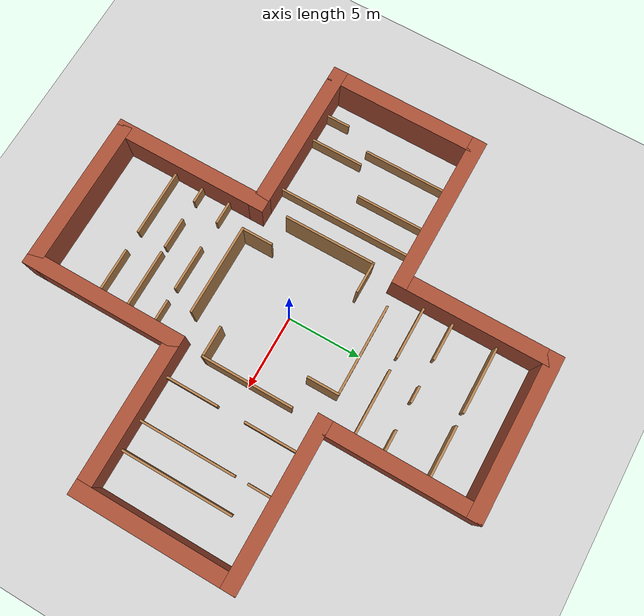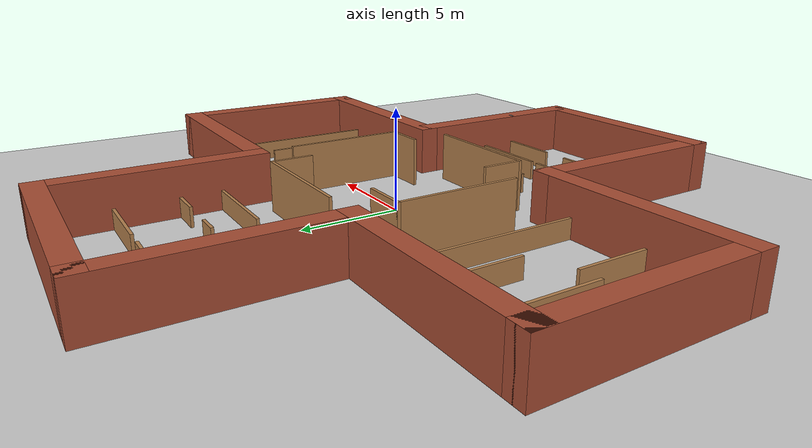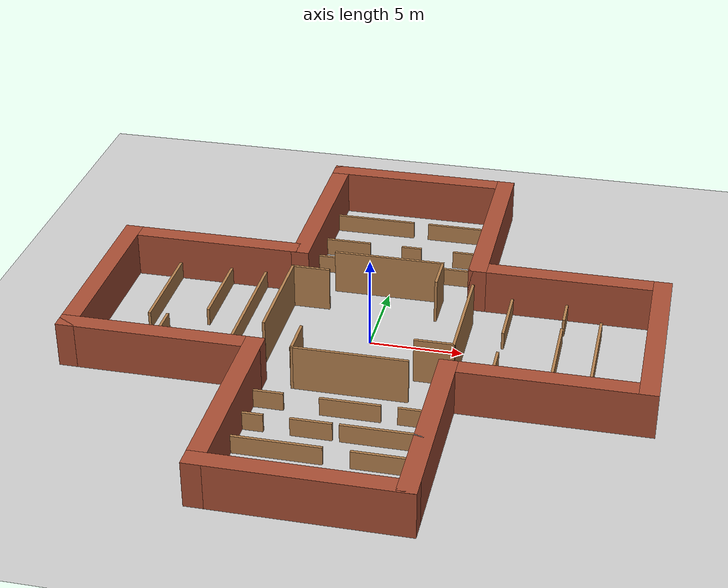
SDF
<?xml version="1.0" ?>
<sdf version="1.5">
  <world name="default">

    <!-- A global light source -->
    <include>
      <uri>model://sun</uri>
    </include>

    <!-- A ground plane -->
    <include>
      <uri>model://ground_plane</uri>
    </include>

<!-- MAZE SDF FILE-->
  <model name='maze'>
    <pose>0 0 0 0 -0 0</pose>
    <link name='Wall_0'>
      <collision name='Wall_0_Collision'>
        <geometry>
          <box>
            <size>11 1 2.5</size>
          </box>
        </geometry>
        <pose>0 0 1.25 0 -0 0</pose>
      </collision>
      <visual name='Wall_0_Visual'>
        <pose>0 0 1.25 0 -0 0</pose>
        <geometry>
          <box>
            <size>11 1 2.5</size>
          </box>
        </geometry>
        <material>
          <script>
            <uri>file://media/materials/scripts/gazebo.material</uri>
            <name>Gazebo/Bricks</name>
          </script>
          <ambient>1 1 1 1</ambient>
        </material>
        <meta>
          <layer>0</layer>
        </meta>
      </visual>
      <pose>0 15 0 0 -0 0</pose>
    </link>
    <link name='Wall_1'>
      <collision name='Wall_1_Collision'>
        <geometry>
          <box>
            <size>11 1 2.5</size>
          </box>
        </geometry>
        <pose>0 0 1.25 0 -0 0</pose>
      </collision>
      <visual name='Wall_1_Visual'>
        <pose>0 0 1.25 0 -0 0</pose>
        <geometry>
          <box>
            <size>11 1 2.5</size>
          </box>
        </geometry>
        <material>
          <script>
            <uri>file://media/materials/scripts/gazebo.material</uri>
            <name>Gazebo/Bricks</name>
          </script>
          <ambient>1 1 1 1</ambient>
        </material>
        <meta>
          <layer>0</layer>
        </meta>
      </visual>
      <pose>5 10 0 0 -0 -1.5708</pose>
    </link>
    <link name='Wall_10'>
      <collision name='Wall_10_Collision'>
        <geometry>
          <box>
            <size>11 1 2.5</size>
          </box>
        </geometry>
        <pose>0 0 1.25 0 -0 0</pose>
      </collision>
      <visual name='Wall_10_Visual'>
        <pose>0 0 1.25 0 -0 0</pose>
        <geometry>
          <box>
            <size>11 1 2.5</size>
          </box>
        </geometry>
        <material>
          <script>
            <uri>file://media/materials/scripts/gazebo.material</uri>
            <name>Gazebo/Bricks</name>
          </script>
          <ambient>1 1 1 1</ambient>
        </material>
        <meta>
          <layer>0</layer>
        </meta>
      </visual>
      <pose>-10 5 0 0 -0 0</pose>
    </link>
    <link name='Wall_11'>
      <collision name='Wall_11_Collision'>
        <geometry>
          <box>
            <size>11 1 2.5</size>
          </box>
        </geometry>
        <pose>0 0 1.25 0 -0 0</pose>
      </collision>
      <visual name='Wall_11_Visual'>
        <pose>0 0 1.25 0 -0 0</pose>
        <geometry>
          <box>
            <size>11 1 2.5</size>
          </box>
        </geometry>
        <material>
          <script>
            <uri>file://media/materials/scripts/gazebo.material</uri>
            <name>Gazebo/Bricks</name>
          </script>
          <ambient>1 1 1 1</ambient>
        </material>
        <meta>
          <layer>0</layer>
        </meta>
      </visual>
      <pose>-5 10 0 0 -0 1.5708</pose>
    </link>
    <link name='Wall_19'>
      <collision name='Wall_19_Collision'>
        <geometry>
          <box>
            <size>5.15 0.15 1</size>
          </box>
        </geometry>
        <pose>0 0 0.5 0 -0 0</pose>
      </collision>
      <visual name='Wall_19_Visual'>
        <pose>0 0 0.5 0 -0 0</pose>
        <geometry>
          <box>
            <size>5.15 0.15 1</size>
          </box>
        </geometry>
        <material>
          <script>
            <uri>file://media/materials/scripts/gazebo.material</uri>
            <name>Gazebo/Wood</name>
          </script>
          <ambient>1 1 1 1</ambient>
        </material>
        <meta>
          <layer>0</layer>
        </meta>
      </visual>
      <pose>-2.5 12 0 0 -0 0</pose>
    </link>
    <link name='Wall_2'>
      <collision name='Wall_2_Collision'>
        <geometry>
          <box>
            <size>11 1 2.5</size>
          </box>
        </geometry>
        <pose>0 0 1.25 0 -0 0</pose>
      </collision>
      <visual name='Wall_2_Visual'>
        <pose>0 0 1.25 0 -0 0</pose>
        <geometry>
          <box>
            <size>11 1 2.5</size>
          </box>
        </geometry>
        <material>
          <script>
            <uri>file://media/materials/scripts/gazebo.material</uri>
            <name>Gazebo/Bricks</name>
          </script>
          <ambient>1 1 1 1</ambient>
        </material>
        <meta>
          <layer>0</layer>
        </meta>
      </visual>
      <pose>10 5 0 0 -0 0</pose>
    </link>
    <link name='Wall_21'>
      <collision name='Wall_21_Collision'>
        <geometry>
          <box>
            <size>4.15 0.15 1</size>
          </box>
        </geometry>
        <pose>0 0 0.5 0 -0 0</pose>
      </collision>
      <visual name='Wall_21_Visual'>
        <pose>0 0 0.5 0 -0 0</pose>
        <geometry>
          <box>
            <size>4.15 0.15 1</size>
          </box>
        </geometry>
        <material>
          <script>
            <uri>file://media/materials/scripts/gazebo.material</uri>
            <name>Gazebo/Wood</name>
          </script>
          <ambient>1 1 1 1</ambient>
        </material>
        <meta>
          <layer>0</layer>
        </meta>
      </visual>
      <pose>3 12 0 0 -0 0</pose>
    </link>
    <link name='Wall_23'>
      <collision name='Wall_23_Collision'>
        <geometry>
          <box>
            <size>3.15 0.15 1</size>
          </box>
        </geometry>
        <pose>0 0 0.5 0 -0 0</pose>
      </collision>
      <visual name='Wall_23_Visual'>
        <pose>0 0 0.5 0 -0 0</pose>
        <geometry>
          <box>
            <size>3.15 0.15 1</size>
          </box>
        </geometry>
        <material>
          <script>
            <uri>file://media/materials/scripts/gazebo.material</uri>
            <name>Gazebo/Wood</name>
          </script>
          <ambient>1 1 1 1</ambient>
        </material>
        <meta>
          <layer>0</layer>
        </meta>
      </visual>
      <pose>-3.5 9 0 0 -0 0</pose>
    </link>
    <link name='Wall_25'>
      <collision name='Wall_25_Collision'>
        <geometry>
          <box>
            <size>1.15 0.15 1</size>
          </box>
        </geometry>
        <pose>0 0 0.5 0 -0 0</pose>
      </collision>
      <visual name='Wall_25_Visual'>
        <pose>0 0 0.5 0 -0 0</pose>
        <geometry>
          <box>
            <size>1.15 0.15 1</size>
          </box>
        </geometry>
        <material>
          <script>
            <uri>file://media/materials/scripts/gazebo.material</uri>
            <name>Gazebo/Wood</name>
          </script>
          <ambient>1 1 1 1</ambient>
        </material>
        <meta>
          <layer>0</layer>
        </meta>
      </visual>
      <pose>0.5 9 0 0 -0 0</pose>
    </link>
    <link name='Wall_27'>
      <collision name='Wall_27_Collision'>
        <geometry>
          <box>
            <size>2.15 0.15 1</size>
          </box>
        </geometry>
        <pose>0 0 0.5 0 -0 0</pose>
      </collision>
      <visual name='Wall_27_Visual'>
        <pose>0 0 0.5 0 -0 0</pose>
        <geometry>
          <box>
            <size>2.15 0.15 1</size>
          </box>
        </geometry>
        <material>
          <script>
            <uri>file://media/materials/scripts/gazebo.material</uri>
            <name>Gazebo/Wood</name>
          </script>
          <ambient>1 1 1 1</ambient>
        </material>
        <meta>
          <layer>0</layer>
        </meta>
      </visual>
      <pose>4 9 0 0 -0 0</pose>
    </link>
    <link name='Wall_29'>
      <collision name='Wall_29_Collision'>
        <geometry>
          <box>
            <size>4.15 0.15 1</size>
          </box>
        </geometry>
        <pose>0 0 0.5 0 -0 0</pose>
      </collision>
      <visual name='Wall_29_Visual'>
        <pose>0 0 0.5 0 -0 0</pose>
        <geometry>
          <box>
            <size>4.15 0.15 1</size>
          </box>
        </geometry>
        <material>
          <script>
            <uri>file://media/materials/scripts/gazebo.material</uri>
            <name>Gazebo/Wood</name>
          </script>
          <ambient>1 1 1 1</ambient>
        </material>
        <meta>
          <layer>0</layer>
        </meta>
      </visual>
      <pose>-3 7 0 0 -0 0</pose>
    </link>
    <link name='Wall_3'>
      <collision name='Wall_3_Collision'>
        <geometry>
          <box>
            <size>11 1 2.5</size>
          </box>
        </geometry>
        <pose>0 0 1.25 0 -0 0</pose>
      </collision>
      <visual name='Wall_3_Visual'>
        <pose>0 0 1.25 0 -0 0</pose>
        <geometry>
          <box>
            <size>11 1 2.5</size>
          </box>
        </geometry>
        <material>
          <script>
            <uri>file://media/materials/scripts/gazebo.material</uri>
            <name>Gazebo/Bricks</name>
          </script>
          <ambient>1 1 1 1</ambient>
        </material>
        <meta>
          <layer>0</layer>
        </meta>
      </visual>
      <pose>15 0 0 0 -0 -1.5708</pose>
    </link>
    <link name='Wall_31'>
      <collision name='Wall_31_Collision'>
        <geometry>
          <box>
            <size>5.15 0.15 1</size>
          </box>
        </geometry>
        <pose>0 0 0.5 0 -0 0</pose>
      </collision>
      <visual name='Wall_31_Visual'>
        <pose>0 0 0.5 0 -0 0</pose>
        <geometry>
          <box>
            <size>5.15 0.15 1</size>
          </box>
        </geometry>
        <material>
          <script>
            <uri>file://media/materials/scripts/gazebo.material</uri>
            <name>Gazebo/Wood</name>
          </script>
          <ambient>1 1 1 1</ambient>
        </material>
        <meta>
          <layer>0</layer>
        </meta>
      </visual>
      <pose>2.5 7 0 0 -0 0</pose>
    </link>
    <link name='Wall_33'>
      <collision name='Wall_33_Collision'>
        <geometry>
          <box>
            <size>6.15 0.15 2.5</size>
          </box>
        </geometry>
        <pose>0 0 1.25 0 -0 0</pose>
      </collision>
      <visual name='Wall_33_Visual'>
        <pose>0 0 1.25 0 -0 0</pose>
        <geometry>
          <box>
            <size>6.15 0.15 2.5</size>
          </box>
        </geometry>
        <material>
          <script>
            <uri>file://media/materials/scripts/gazebo.material</uri>
            <name>Gazebo/Wood</name>
          </script>
          <ambient>1 1 1 1</ambient>
        </material>
        <meta>
          <layer>0</layer>
        </meta>
      </visual>
      <pose>0 5 0 0 -0 0</pose>
    </link>
    <link name='Wall_35'>
      <collision name='Wall_35_Collision'>
        <geometry>
          <box>
            <size>6.15 0.15 2.5</size>
          </box>
        </geometry>
        <pose>0 0 1.25 0 -0 0</pose>
      </collision>
      <visual name='Wall_35_Visual'>
        <pose>0 0 1.25 0 -0 0</pose>
        <geometry>
          <box>
            <size>6.15 0.15 2.5</size>
          </box>
        </geometry>
        <material>
          <script>
            <uri>file://media/materials/scripts/gazebo.material</uri>
            <name>Gazebo/Wood</name>
          </script>
          <ambient>1 1 1 1</ambient>
        </material>
        <meta>
          <layer>0</layer>
        </meta>
      </visual>
      <pose>5 0 0 0 -0 -1.5708</pose>
    </link>
    <link name='Wall_37'>
      <collision name='Wall_37_Collision'>
        <geometry>
          <box>
            <size>6.15 0.15 2.5</size>
          </box>
        </geometry>
        <pose>0 0 1.25 0 -0 0</pose>
      </collision>
      <visual name='Wall_37_Visual'>
        <pose>0 0 1.25 0 -0 0</pose>
        <geometry>
          <box>
            <size>6.15 0.15 2.5</size>
          </box>
        </geometry>
        <material>
          <script>
            <uri>file://media/materials/scripts/gazebo.material</uri>
            <name>Gazebo/Wood</name>
          </script>
          <ambient>1 1 1 1</ambient>
        </material>
        <meta>
          <layer>0</layer>
        </meta>
      </visual>
      <pose>0 -5 0 0 -0 0</pose>
    </link>
    <link name='Wall_39'>
      <collision name='Wall_39_Collision'>
        <geometry>
          <box>
            <size>6.15 0.15 2.5</size>
          </box>
        </geometry>
        <pose>0 0 1.25 0 -0 0</pose>
      </collision>
      <visual name='Wall_39_Visual'>
        <pose>0 0 1.25 0 -0 0</pose>
        <geometry>
          <box>
            <size>6.15 0.15 2.5</size>
          </box>
        </geometry>
        <material>
          <script>
            <uri>file://media/materials/scripts/gazebo.material</uri>
            <name>Gazebo/Wood</name>
          </script>
          <ambient>1 1 1 1</ambient>
        </material>
        <meta>
          <layer>0</layer>
        </meta>
      </visual>
      <pose>-5 0 0 0 -0 -1.5708</pose>
    </link>
    <link name='Wall_4'>
      <collision name='Wall_4_Collision'>
        <geometry>
          <box>
            <size>11 1 2.5</size>
          </box>
        </geometry>
        <pose>0 0 1.25 0 -0 0</pose>
      </collision>
      <visual name='Wall_4_Visual'>
        <pose>0 0 1.25 0 -0 0</pose>
        <geometry>
          <box>
            <size>11 1 2.5</size>
          </box>
        </geometry>
        <material>
          <script>
            <uri>file://media/materials/scripts/gazebo.material</uri>
            <name>Gazebo/Bricks</name>
          </script>
          <ambient>1 1 1 1</ambient>
        </material>
        <meta>
          <layer>0</layer>
        </meta>
      </visual>
      <pose>10 -5 0 0 -0 3.14159</pose>
    </link>
    <link name='Wall_41'>
      <collision name='Wall_41_Collision'>
        <geometry>
          <box>
            <size>10.15 0.15 1</size>
          </box>
        </geometry>
        <pose>0 0 0.5 0 -0 0</pose>
      </collision>
      <visual name='Wall_41_Visual'>
        <pose>0 0 0.5 0 -0 0</pose>
        <geometry>
          <box>
            <size>10.15 0.15 1</size>
          </box>
        </geometry>
        <material>
          <script>
            <uri>file://media/materials/scripts/gazebo.material</uri>
            <name>Gazebo/Wood</name>
          </script>
          <ambient>1 1 1 1</ambient>
        </material>
        <meta>
          <layer>0</layer>
        </meta>
      </visual>
      <pose>-7 0 0 0 -0 -1.5708</pose>
    </link>
    <link name='Wall_43'>
      <collision name='Wall_43_Collision'>
        <geometry>
          <box>
            <size>5.15 0.15 1</size>
          </box>
        </geometry>
        <pose>0 0 0.5 0 -0 0</pose>
      </collision>
      <visual name='Wall_43_Visual'>
        <pose>0 0 0.5 0 -0 0</pose>
        <geometry>
          <box>
            <size>5.15 0.15 1</size>
          </box>
        </geometry>
        <material>
          <script>
            <uri>file://media/materials/scripts/gazebo.material</uri>
            <name>Gazebo/Wood</name>
          </script>
          <ambient>1 1 1 1</ambient>
        </material>
        <meta>
          <layer>0</layer>
        </meta>
      </visual>
      <pose>-9 2.5 0 0 -0 -1.5708</pose>
    </link>
    <link name='Wall_45'>
      <collision name='Wall_45_Collision'>
        <geometry>
          <box>
            <size>4.15 0.15 1</size>
          </box>
        </geometry>
        <pose>0 0 0.5 0 -0 0</pose>
      </collision>
      <visual name='Wall_45_Visual'>
        <pose>0 0 0.5 0 -0 0</pose>
        <geometry>
          <box>
            <size>4.15 0.15 1</size>
          </box>
        </geometry>
        <material>
          <script>
            <uri>file://media/materials/scripts/gazebo.material</uri>
            <name>Gazebo/Wood</name>
          </script>
          <ambient>1 1 1 1</ambient>
        </material>
        <meta>
          <layer>0</layer>
        </meta>
      </visual>
      <pose>-11 -3 0 0 -0 -1.5708</pose>
    </link>
    <link name='Wall_47'>
      <collision name='Wall_47_Collision'>
        <geometry>
          <box>
            <size>6.15 0.15 1</size>
          </box>
        </geometry>
        <pose>0 0 0.5 0 -0 0</pose>
      </collision>
      <visual name='Wall_47_Visual'>
        <pose>0 0 0.5 0 -0 0</pose>
        <geometry>
          <box>
            <size>6.15 0.15 1</size>
          </box>
        </geometry>
        <material>
          <script>
            <uri>file://media/materials/scripts/gazebo.material</uri>
            <name>Gazebo/Wood</name>
          </script>
          <ambient>1 1 1 1</ambient>
        </material>
        <meta>
          <layer>0</layer>
        </meta>
      </visual>
      <pose>-12 2 0 0 -0 -1.5708</pose>
    </link>
    <link name='Wall_49'>
      <collision name='Wall_49_Collision'>
        <geometry>
          <box>
            <size>2.15 0.15 1</size>
          </box>
        </geometry>
        <pose>0 0 0.5 0 -0 0</pose>
      </collision>
      <visual name='Wall_49_Visual'>
        <pose>0 0 0.5 0 -0 0</pose>
        <geometry>
          <box>
            <size>2.15 0.15 1</size>
          </box>
        </geometry>
        <material>
          <script>
            <uri>file://media/materials/scripts/gazebo.material</uri>
            <name>Gazebo/Wood</name>
          </script>
          <ambient>1 1 1 1</ambient>
        </material>
        <meta>
          <layer>0</layer>
        </meta>
      </visual>
      <pose>-13 -4 0 0 -0 -1.5708</pose>
    </link>
    <link name='Wall_5'>
      <collision name='Wall_5_Collision'>
        <geometry>
          <box>
            <size>11 1 2.5</size>
          </box>
        </geometry>
        <pose>0 0 1.25 0 -0 0</pose>
      </collision>
      <visual name='Wall_5_Visual'>
        <pose>0 0 1.25 0 -0 0</pose>
        <geometry>
          <box>
            <size>11 1 2.5</size>
          </box>
        </geometry>
        <material>
          <script>
            <uri>file://media/materials/scripts/gazebo.material</uri>
            <name>Gazebo/Bricks</name>
          </script>
          <ambient>1 1 1 1</ambient>
        </material>
        <meta>
          <layer>0</layer>
        </meta>
      </visual>
      <pose>5 -10 0 0 -0 -1.5708</pose>
    </link>
    <link name='Wall_51'>
      <collision name='Wall_51_Collision'>
        <geometry>
          <box>
            <size>2.15 0.15 1</size>
          </box>
        </geometry>
        <pose>0 0 0.5 0 -0 0</pose>
      </collision>
      <visual name='Wall_51_Visual'>
        <pose>0 0 0.5 0 -0 0</pose>
        <geometry>
          <box>
            <size>2.15 0.15 1</size>
          </box>
        </geometry>
        <material>
          <script>
            <uri>file://media/materials/scripts/gazebo.material</uri>
            <name>Gazebo/Wood</name>
          </script>
          <ambient>1 1 1 1</ambient>
        </material>
        <meta>
          <layer>0</layer>
        </meta>
      </visual>
      <pose>-4 -7 0 0 -0 0</pose>
    </link>
    <link name='Wall_53'>
      <collision name='Wall_53_Collision'>
        <geometry>
          <box>
            <size>3.15 0.15 1</size>
          </box>
        </geometry>
        <pose>0 0 0.5 0 -0 0</pose>
      </collision>
      <visual name='Wall_53_Visual'>
        <pose>0 0 0.5 0 -0 0</pose>
        <geometry>
          <box>
            <size>3.15 0.15 1</size>
          </box>
        </geometry>
        <material>
          <script>
            <uri>file://media/materials/scripts/gazebo.material</uri>
            <name>Gazebo/Wood</name>
          </script>
          <ambient>1 1 1 1</ambient>
        </material>
        <meta>
          <layer>0</layer>
        </meta>
      </visual>
      <pose>0.5 -7 0 0 -0 0</pose>
    </link>
    <link name='Wall_55'>
      <collision name='Wall_55_Collision'>
        <geometry>
          <box>
            <size>2.15 0.15 1</size>
          </box>
        </geometry>
        <pose>0 0 0.5 0 -0 0</pose>
      </collision>
      <visual name='Wall_55_Visual'>
        <pose>0 0 0.5 0 -0 0</pose>
        <geometry>
          <box>
            <size>2.15 0.15 1</size>
          </box>
        </geometry>
        <material>
          <script>
            <uri>file://media/materials/scripts/gazebo.material</uri>
            <name>Gazebo/Wood</name>
          </script>
          <ambient>1 1 1 1</ambient>
        </material>
        <meta>
          <layer>0</layer>
        </meta>
      </visual>
      <pose>4 -7 0 0 -0 0</pose>
    </link>
    <link name='Wall_57'>
      <collision name='Wall_57_Collision'>
        <geometry>
          <box>
            <size>1.65 0.15 1</size>
          </box>
        </geometry>
        <pose>0 0 0.5 0 -0 0</pose>
      </collision>
      <visual name='Wall_57_Visual'>
        <pose>0 0 0.5 0 -0 0</pose>
        <geometry>
          <box>
            <size>1.65 0.15 1</size>
          </box>
        </geometry>
        <material>
          <script>
            <uri>file://media/materials/scripts/gazebo.material</uri>
            <name>Gazebo/Wood</name>
          </script>
          <ambient>1 1 1 1</ambient>
        </material>
        <meta>
          <layer>0</layer>
        </meta>
      </visual>
      <pose>-4.25 -9 0 0 -0 0</pose>
    </link>
    <link name='Wall_59'>
      <collision name='Wall_59_Collision'>
        <geometry>
          <box>
            <size>2.15 0.15 1</size>
          </box>
        </geometry>
        <pose>0 0 0.5 0 -0 0</pose>
      </collision>
      <visual name='Wall_59_Visual'>
        <pose>0 0 0.5 0 -0 0</pose>
        <geometry>
          <box>
            <size>2.15 0.15 1</size>
          </box>
        </geometry>
        <material>
          <script>
            <uri>file://media/materials/scripts/gazebo.material</uri>
            <name>Gazebo/Wood</name>
          </script>
          <ambient>1 1 1 1</ambient>
        </material>
        <meta>
          <layer>0</layer>
        </meta>
      </visual>
      <pose>-1 -9 0 0 -0 0</pose>
    </link>
    <link name='Wall_6'>
      <collision name='Wall_6_Collision'>
        <geometry>
          <box>
            <size>11 1 2.5</size>
          </box>
        </geometry>
        <pose>0 0 1.25 0 -0 0</pose>
      </collision>
      <visual name='Wall_6_Visual'>
        <pose>0 0 1.25 0 -0 0</pose>
        <geometry>
          <box>
            <size>11 1 2.5</size>
          </box>
        </geometry>
        <material>
          <script>
            <uri>file://media/materials/scripts/gazebo.material</uri>
            <name>Gazebo/Bricks</name>
          </script>
          <ambient>1 1 1 1</ambient>
        </material>
        <meta>
          <layer>0</layer>
        </meta>
      </visual>
      <pose>0 -15 0 0 -0 3.14159</pose>
    </link>
    <link name='Wall_61'>
      <collision name='Wall_61_Collision'>
        <geometry>
          <box>
            <size>4.65 0.15 1</size>
          </box>
        </geometry>
        <pose>0 0 0.5 0 -0 0</pose>
      </collision>
      <visual name='Wall_61_Visual'>
        <pose>0 0 0.5 0 -0 0</pose>
        <geometry>
          <box>
            <size>4.65 0.15 1</size>
          </box>
        </geometry>
        <material>
          <script>
            <uri>file://media/materials/scripts/gazebo.material</uri>
            <name>Gazebo/Wood</name>
          </script>
          <ambient>1 1 1 1</ambient>
        </material>
        <meta>
          <layer>0</layer>
        </meta>
      </visual>
      <pose>2.75 -9 0 0 -0 0</pose>
    </link>
    <link name='Wall_63'>
      <collision name='Wall_63_Collision'>
        <geometry>
          <box>
            <size>5.15 0.15 1</size>
          </box>
        </geometry>
        <pose>0 0 0.5 0 -0 0</pose>
      </collision>
      <visual name='Wall_63_Visual'>
        <pose>0 0 0.5 0 -0 0</pose>
        <geometry>
          <box>
            <size>5.15 0.15 1</size>
          </box>
        </geometry>
        <material>
          <script>
            <uri>file://media/materials/scripts/gazebo.material</uri>
            <name>Gazebo/Wood</name>
          </script>
          <ambient>1 1 1 1</ambient>
        </material>
        <meta>
          <layer>0</layer>
        </meta>
      </visual>
      <pose>-2.5 -11 0 0 -0 0</pose>
    </link>
    <link name='Wall_65'>
      <collision name='Wall_65_Collision'>
        <geometry>
          <box>
            <size>3.65 0.15 1</size>
          </box>
        </geometry>
        <pose>0 0 0.5 0 -0 0</pose>
      </collision>
      <visual name='Wall_65_Visual'>
        <pose>0 0 0.5 0 -0 0</pose>
        <geometry>
          <box>
            <size>3.65 0.15 1</size>
          </box>
        </geometry>
        <material>
          <script>
            <uri>file://media/materials/scripts/gazebo.material</uri>
            <name>Gazebo/Wood</name>
          </script>
          <ambient>1 1 1 1</ambient>
        </material>
        <meta>
          <layer>0</layer>
        </meta>
      </visual>
      <pose>3.25 -11 0 0 -0 0</pose>
    </link>
    <link name='Wall_67'>
      <collision name='Wall_67_Collision'>
        <geometry>
          <box>
            <size>0.5 0.15 2.5</size>
          </box>
        </geometry>
        <pose>0 0 1.25 0 -0 0</pose>
      </collision>
      <visual name='Wall_67_Visual'>
        <pose>0 0 1.25 0 -0 0</pose>
        <geometry>
          <box>
            <size>0.5 0.15 2.5</size>
          </box>
        </geometry>
        <material>
          <script>
            <uri>file://media/materials/scripts/gazebo.material</uri>
            <name>Gazebo/Grey</name>
          </script>
          <ambient>1 1 1 1</ambient>
        </material>
        <meta>
          <layer>0</layer>
        </meta>
      </visual>
      <pose>4.76225 -11.0986 0 0 -0 -0.261799</pose>
    </link>
    <link name='Wall_69'>
      <collision name='Wall_69_Collision'>
        <geometry>
          <box>
            <size>8.15 0.15 1</size>
          </box>
        </geometry>
        <pose>0 0 0.5 0 -0 0</pose>
      </collision>
      <visual name='Wall_69_Visual'>
        <pose>0 0 0.5 0 -0 0</pose>
        <geometry>
          <box>
            <size>8.15 0.15 1</size>
          </box>
        </geometry>
        <material>
          <script>
            <uri>file://media/materials/scripts/gazebo.material</uri>
            <name>Gazebo/Wood</name>
          </script>
          <ambient>1 1 1 1</ambient>
        </material>
        <meta>
          <layer>0</layer>
        </meta>
      </visual>
      <pose>12 -1 0 0 -0 -1.5708</pose>
    </link>
    <link name='Wall_7'>
      <collision name='Wall_7_Collision'>
        <geometry>
          <box>
            <size>11 1 2.5</size>
          </box>
        </geometry>
        <pose>0 0 1.25 0 -0 0</pose>
      </collision>
      <visual name='Wall_7_Visual'>
        <pose>0 0 1.25 0 -0 0</pose>
        <geometry>
          <box>
            <size>11 1 2.5</size>
          </box>
        </geometry>
        <material>
          <script>
            <uri>file://media/materials/scripts/gazebo.material</uri>
            <name>Gazebo/Bricks</name>
          </script>
          <ambient>1 1 1 1</ambient>
        </material>
        <meta>
          <layer>0</layer>
        </meta>
      </visual>
      <pose>-5 -10 0 0 -0 1.5708</pose>
    </link>
    <link name='Wall_71'>
      <collision name='Wall_71_Collision'>
        <geometry>
          <box>
            <size>7.15 0.15 1</size>
          </box>
        </geometry>
        <pose>0 0 0.5 0 -0 0</pose>
      </collision>
      <visual name='Wall_71_Visual'>
        <pose>0 0 0.5 0 -0 0</pose>
        <geometry>
          <box>
            <size>7.15 0.15 1</size>
          </box>
        </geometry>
        <material>
          <script>
            <uri>file://media/materials/scripts/gazebo.material</uri>
            <name>Gazebo/Wood</name>
          </script>
          <ambient>1 1 1 1</ambient>
        </material>
        <meta>
          <layer>0</layer>
        </meta>
      </visual>
      <pose>10 -1.5 0 0 -0 -1.5708</pose>
    </link>
    <link name='Wall_73'>
      <collision name='Wall_73_Collision'>
        <geometry>
          <box>
            <size>4.15 0.15 1</size>
          </box>
        </geometry>
        <pose>0 0 0.5 0 -0 0</pose>
      </collision>
      <visual name='Wall_73_Visual'>
        <pose>0 0 0.5 0 -0 0</pose>
        <geometry>
          <box>
            <size>4.15 0.15 1</size>
          </box>
        </geometry>
        <material>
          <script>
            <uri>file://media/materials/scripts/gazebo.material</uri>
            <name>Gazebo/Wood</name>
          </script>
          <ambient>1 1 1 1</ambient>
        </material>
        <meta>
          <layer>0</layer>
        </meta>
      </visual>
      <pose>7 -3 0 0 -0 -1.5708</pose>
    </link>
    <link name='Wall_75'>
      <collision name='Wall_75_Collision'>
        <geometry>
          <box>
            <size>4.159 0.15 1</size>
          </box>
        </geometry>
        <pose>0 0 0.5 0 -0 0</pose>
      </collision>
      <visual name='Wall_75_Visual'>
        <pose>0 0 0.5 0 -0 0</pose>
        <geometry>
          <box>
            <size>4.159 0.15 1</size>
          </box>
        </geometry>
        <material>
          <script>
            <uri>file://media/materials/scripts/gazebo.material</uri>
            <name>Gazebo/Wood</name>
          </script>
          <ambient>1 1 1 1</ambient>
        </material>
        <meta>
          <layer>0</layer>
        </meta>
      </visual>
      <pose>7 3.0045 0 0 -0 -1.5708</pose>
    </link>
    <link name='Wall_77'>
      <collision name='Wall_77_Collision'>
        <geometry>
          <box>
            <size>2.15 0.15 1</size>
          </box>
        </geometry>
        <pose>0 0 0.5 0 -0 0</pose>
      </collision>
      <visual name='Wall_77_Visual'>
        <pose>0 0 0.5 0 -0 0</pose>
        <geometry>
          <box>
            <size>2.15 0.15 1</size>
          </box>
        </geometry>
        <material>
          <script>
            <uri>file://media/materials/scripts/gazebo.material</uri>
            <name>Gazebo/Wood</name>
          </script>
          <ambient>1 1 1 1</ambient>
        </material>
        <meta>
          <layer>0</layer>
        </meta>
      </visual>
      <pose>10 4 0 0 -0 -1.5708</pose>
    </link>
    <link name='Wall_8'>
      <collision name='Wall_8_Collision'>
        <geometry>
          <box>
            <size>11 1 2.5</size>
          </box>
        </geometry>
        <pose>0 0 1.25 0 -0 0</pose>
      </collision>
      <visual name='Wall_8_Visual'>
        <pose>0 0 1.25 0 -0 0</pose>
        <geometry>
          <box>
            <size>11 1 2.5</size>
          </box>
        </geometry>
        <material>
          <script>
            <uri>file://media/materials/scripts/gazebo.material</uri>
            <name>Gazebo/Bricks</name>
          </script>
          <ambient>1 1 1 1</ambient>
        </material>
        <meta>
          <layer>0</layer>
        </meta>
      </visual>
      <pose>-10 -5 0 0 -0 3.14159</pose>
    </link>
    <link name='Wall_80'>
      <collision name='Wall_80_Collision'>
        <geometry>
          <box>
            <size>2.15 0.15 2.5</size>
          </box>
        </geometry>
        <pose>0 0 1.25 0 -0 0</pose>
      </collision>
      <visual name='Wall_80_Visual'>
        <pose>0 0 1.25 0 -0 0</pose>
        <geometry>
          <box>
            <size>2.15 0.15 2.5</size>
          </box>
        </geometry>
        <material>
          <script>
            <uri>file://media/materials/scripts/gazebo.material</uri>
            <name>Gazebo/Wood</name>
          </script>
          <ambient>1 1 1 1</ambient>
        </material>
        <meta>
          <layer>0</layer>
        </meta>
      </visual>
      <pose>-4 3 0 0 -0 0</pose>
    </link>
    <link name='Wall_82'>
      <collision name='Wall_82_Collision'>
        <geometry>
          <box>
            <size>2.15 0.15 2.5</size>
          </box>
        </geometry>
        <pose>0 0 1.25 0 -0 0</pose>
      </collision>
      <visual name='Wall_82_Visual'>
        <pose>0 0 1.25 0 -0 0</pose>
        <geometry>
          <box>
            <size>2.15 0.15 2.5</size>
          </box>
        </geometry>
        <material>
          <script>
            <uri>file://media/materials/scripts/gazebo.material</uri>
            <name>Gazebo/Wood</name>
          </script>
          <ambient>1 1 1 1</ambient>
        </material>
        <meta>
          <layer>0</layer>
        </meta>
      </visual>
      <pose>3 4 0 0 -0 -1.5708</pose>
    </link>
    <link name='Wall_84'>
      <collision name='Wall_84_Collision'>
        <geometry>
          <box>
            <size>2.15 0.15 2.5</size>
          </box>
        </geometry>
        <pose>0 0 1.25 0 -0 0</pose>
      </collision>
      <visual name='Wall_84_Visual'>
        <pose>0 0 1.25 0 -0 0</pose>
        <geometry>
          <box>
            <size>2.15 0.15 2.5</size>
          </box>
        </geometry>
        <material>
          <script>
            <uri>file://media/materials/scripts/gazebo.material</uri>
            <name>Gazebo/Wood</name>
          </script>
          <ambient>1 1 1 1</ambient>
        </material>
        <meta>
          <layer>0</layer>
        </meta>
      </visual>
      <pose>4 -3 0 0 -0 3.14159</pose>
    </link>
    <link name='Wall_86'>
      <collision name='Wall_86_Collision'>
        <geometry>
          <box>
            <size>2.15 0.15 2.5</size>
          </box>
        </geometry>
        <pose>0 0 1.25 0 -0 0</pose>
      </collision>
      <visual name='Wall_86_Visual'>
        <pose>0 0 1.25 0 -0 0</pose>
        <geometry>
          <box>
            <size>2.15 0.15 2.5</size>
          </box>
        </geometry>
        <material>
          <script>
            <uri>file://media/materials/scripts/gazebo.material</uri>
            <name>Gazebo/Wood</name>
          </script>
          <ambient>1 1 1 1</ambient>
        </material>
        <meta>
          <layer>0</layer>
        </meta>
      </visual>
      <pose>-3 -4 0 0 -0 1.5708</pose>
    </link>
    <link name='Wall_9'>
      <collision name='Wall_9_Collision'>
        <geometry>
          <box>
            <size>11 1 2.5</size>
          </box>
        </geometry>
        <pose>0 0 1.25 0 -0 0</pose>
      </collision>
      <visual name='Wall_9_Visual'>
        <pose>0 0 1.25 0 -0 0</pose>
        <geometry>
          <box>
            <size>11 1 2.5</size>
          </box>
        </geometry>
        <material>
          <script>
            <uri>file://media/materials/scripts/gazebo.material</uri>
            <name>Gazebo/Bricks</name>
          </script>
          <ambient>1 1 1 1</ambient>
        </material>
        <meta>
          <layer>0</layer>
        </meta>
      </visual>
      <pose>-15 0 0 0 -0 1.5708</pose>
    </link>
    <static>1</static>
  </model>
</world>
</sdf>
